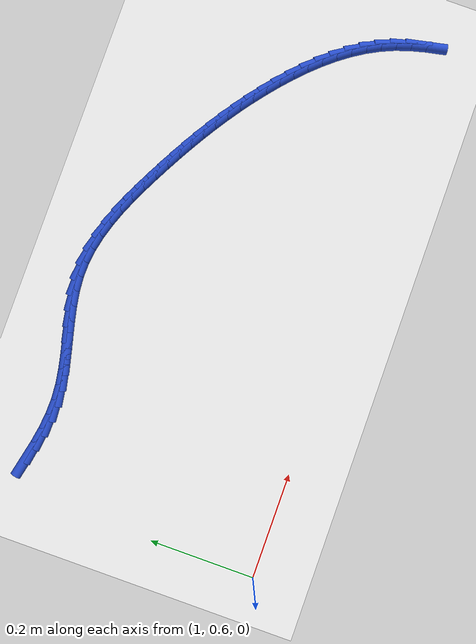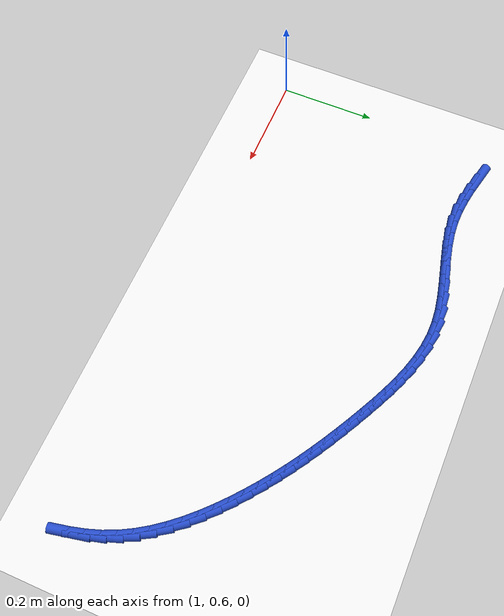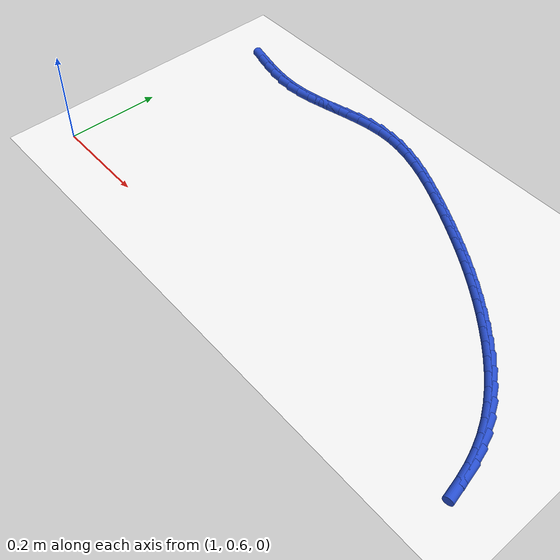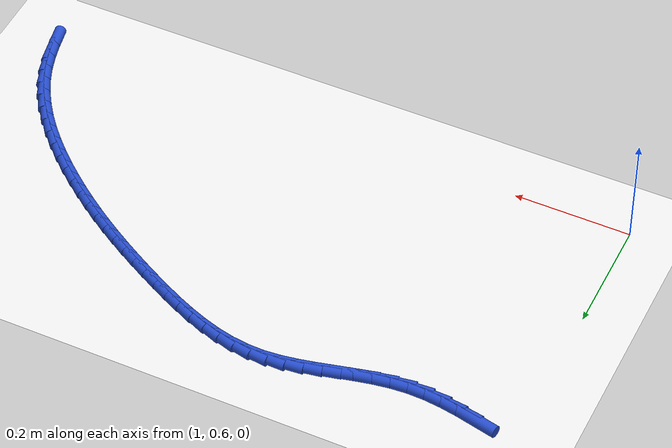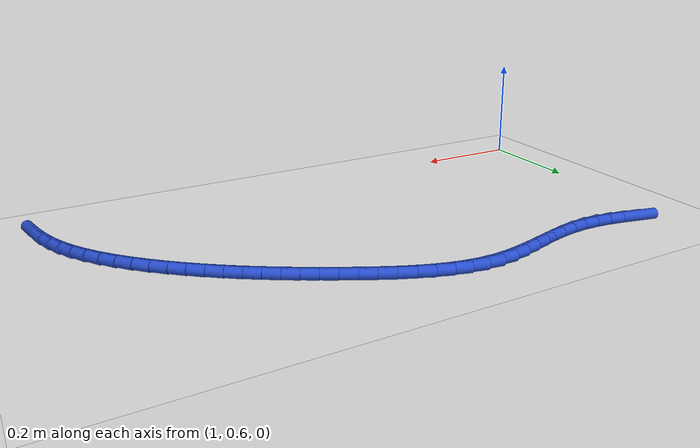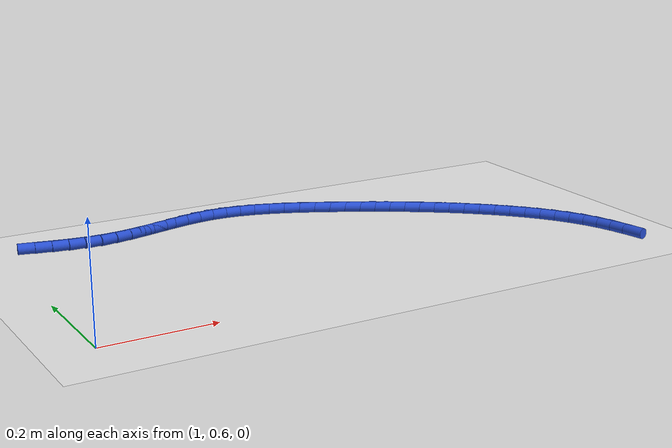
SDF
<sdf version="1.6">
 <world name="default">
  <model name="ground_plane">
   <static>1</static>
   <link name="link">
    <collision name="collision">
     <geometry><plane><normal>0 0 1</normal><size>100 100</size></plane></geometry>
     <surface><friction><ode><mu>100</mu><mu2>50</mu2></ode></friction></surface>
    </collision>
    <visual name="visual">
     <cast_shadows>0</cast_shadows>
     <geometry><plane><normal>0 0 1</normal><size>100 100</size></plane></geometry>
     <material>
      <script><uri>file://media/materials/scripts/gazebo.material</uri><name>Gazebo/WhiteGlow</name></script>
     </material>
    </visual>
   </link>
  </model>
  <model name="line">
   <link name="link_58">
    <pose>1.0699996267666956 1.0671041223457225 0.01 0 1.57 -0.2171216049999247</pose>
    <collision name="collision">
     <geometry><cylinder><radius>0.01</radius><length>0.08</length></cylinder></geometry>
    </collision>
    <visual name="visual">
     <material>
      <script><name>Gazebo/Blue</name><uri>file://media/materials/scripts/gazebo.material</uri></script>
     </material>
     <geometry><cylinder><radius>0.01</radius><length>0.08</length></cylinder></geometry>
    </visual>
   </link>
   <link name="link_59">
    <pose>1.0989679382553634 1.0607137410377852 0.01 0 1.57 -0.1693121101207636</pose>
    <collision name="collision">
     <geometry><cylinder><radius>0.01</radius><length>0.08</length></cylinder></geometry>
    </collision>
    <visual name="visual">
     <material>
      <script><name>Gazebo/Blue</name><uri>file://media/materials/scripts/gazebo.material</uri></script>
     </material>
     <geometry><cylinder><radius>0.01</radius><length>0.08</length></cylinder></geometry>
    </visual>
   </link>
   <link name="link_60">
    <pose>1.1279360252701225 1.0557616828775305 0.01 0 1.57 -0.10472055467107064</pose>
    <collision name="collision">
     <geometry><cylinder><radius>0.01</radius><length>0.08</length></cylinder></geometry>
    </collision>
    <visual name="visual">
     <material>
      <script><name>Gazebo/Blue</name><uri>file://media/materials/scripts/gazebo.material</uri></script>
     </material>
     <geometry><cylinder><radius>0.01</radius><length>0.08</length></cylinder></geometry>
    </visual>
   </link>
   <link name="link_61">
    <pose>1.1569004547826158 1.0527173752493306 0.01 0 1.57 -0.023034289158779902</pose>
    <collision name="collision">
     <geometry><cylinder><radius>0.01</radius><length>0.08</length></cylinder></geometry>
    </collision>
    <visual name="visual">
     <material>
      <script><name>Gazebo/Blue</name><uri>file://media/materials/scripts/gazebo.material</uri></script>
     </material>
     <geometry><cylinder><radius>0.01</radius><length>0.08</length></cylinder></geometry>
    </visual>
   </link>
   <link name="link_62">
    <pose>1.1858577937644874 1.0520502455375575 0.01 0 1.57 0.07282915874393478</pose>
    <collision name="collision">
     <geometry><cylinder><radius>0.01</radius><length>0.08</length></cylinder></geometry>
    </collision>
    <visual name="visual">
     <material>
      <script><name>Gazebo/Blue</name><uri>file://media/materials/scripts/gazebo.material</uri></script>
     </material>
     <geometry><cylinder><radius>0.01</radius><length>0.08</length></cylinder></geometry>
    </visual>
   </link>
   <link name="link_63">
    <pose>1.214804503902751 1.054162145305915 0.01 0 1.57 0.15611509702218304</pose>
    <collision name="collision">
     <geometry><cylinder><radius>0.01</radius><length>0.08</length></cylinder></geometry>
    </collision>
    <visual name="visual">
     <material>
      <script><name>Gazebo/Blue</name><uri>file://media/materials/scripts/gazebo.material</uri></script>
     </material>
     <geometry><cylinder><radius>0.01</radius><length>0.08</length></cylinder></geometry>
    </visual>
   </link>
   <link name="link_64">
    <pose>1.2437358953508337 1.0587158265264691 0.01 0 1.57 0.2113383226328555</pose>
    <collision name="collision">
     <geometry><cylinder><radius>0.01</radius><length>0.08</length></cylinder></geometry>
    </collision>
    <visual name="visual">
     <material>
      <script><name>Gazebo/Blue</name><uri>file://media/materials/scripts/gazebo.material</uri></script>
     </material>
     <geometry><cylinder><radius>0.01</radius><length>0.08</length></cylinder></geometry>
    </visual>
   </link>
   <link name="link_65">
    <pose>1.2726465683306345 1.0649183791652321 0.01 0 1.57 0.23945398494847578</pose>
    <collision name="collision">
     <geometry><cylinder><radius>0.01</radius><length>0.08</length></cylinder></geometry>
    </collision>
    <visual name="visual">
     <material>
      <script><name>Gazebo/Blue</name><uri>file://media/materials/scripts/gazebo.material</uri></script>
     </material>
     <geometry><cylinder><radius>0.01</radius><length>0.08</length></cylinder></geometry>
    </visual>
   </link>
   <link name="link_66">
    <pose>1.301531112629606 1.0719701959511532 0.01 0 1.57 0.24132919764163444</pose>
    <collision name="collision">
     <geometry><cylinder><radius>0.01</radius><length>0.08</length></cylinder></geometry>
    </collision>
    <visual name="visual">
     <material>
      <script><name>Gazebo/Blue</name><uri>file://media/materials/scripts/gazebo.material</uri></script>
     </material>
     <geometry><cylinder><radius>0.01</radius><length>0.08</length></cylinder></geometry>
    </visual>
   </link>
   <link name="link_67">
    <pose>1.3303841180352018 1.0790716696131821 0.01 0 1.57 0.21694717801702884</pose>
    <collision name="collision">
     <geometry><cylinder><radius>0.01</radius><length>0.08</length></cylinder></geometry>
    </collision>
    <visual name="visual">
     <material>
      <script><name>Gazebo/Blue</name><uri>file://media/materials/scripts/gazebo.material</uri></script>
     </material>
     <geometry><cylinder><radius>0.01</radius><length>0.08</length></cylinder></geometry>
    </visual>
   </link>
   <link name="link_68">
    <pose>1.359200174334876 1.0854231928802693 0.01 0 1.57 0.16536337384341823</pose>
    <collision name="collision">
     <geometry><cylinder><radius>0.01</radius><length>0.08</length></cylinder></geometry>
    </collision>
    <visual name="visual">
     <material>
      <script><name>Gazebo/Blue</name><uri>file://media/materials/scripts/gazebo.material</uri></script>
     </material>
     <geometry><cylinder><radius>0.01</radius><length>0.08</length></cylinder></geometry>
    </visual>
   </link>
   <link name="link_69">
    <pose>1.3879738713160819 1.0902251584813638 0.01 0 1.57 0.08517969117794863</pose>
    <collision name="collision">
     <geometry><cylinder><radius>0.01</radius><length>0.08</length></cylinder></geometry>
    </collision>
    <visual name="visual">
     <material>
      <script><name>Gazebo/Blue</name><uri>file://media/materials/scripts/gazebo.material</uri></script>
     </material>
     <geometry><cylinder><radius>0.01</radius><length>0.08</length></cylinder></geometry>
    </visual>
   </link>
   <link name="link_70">
    <pose>1.416699798766274 1.0926779591454163 0.01 0 1.57 -0.021218622947271636</pose>
    <collision name="collision">
     <geometry><cylinder><radius>0.01</radius><length>0.08</length></cylinder></geometry>
    </collision>
    <visual name="visual">
     <material>
      <script><name>Gazebo/Blue</name><uri>file://media/materials/scripts/gazebo.material</uri></script>
     </material>
     <geometry><cylinder><radius>0.01</radius><length>0.08</length></cylinder></geometry>
    </visual>
   </link>
   <link name="link_71">
    <pose>1.4453690356736648 1.0920695461059589 0.01 0 1.57 -0.12692684525320397</pose>
    <collision name="collision">
     <geometry><cylinder><radius>0.01</radius><length>0.08</length></cylinder></geometry>
    </collision>
    <visual name="visual">
     <material>
      <script><name>Gazebo/Blue</name><uri>file://media/materials/scripts/gazebo.material</uri></script>
     </material>
     <geometry><cylinder><radius>0.01</radius><length>0.08</length></cylinder></geometry>
    </visual>
   </link>
   <link name="link_72">
    <pose>1.4739431801302336 1.088423117191821 0.01 0 1.57 -0.21789391723330317</pose>
    <collision name="collision">
     <geometry><cylinder><radius>0.01</radius><length>0.08</length></cylinder></geometry>
    </collision>
    <visual name="visual">
     <material>
      <script><name>Gazebo/Blue</name><uri>file://media/materials/scripts/gazebo.material</uri></script>
     </material>
     <geometry><cylinder><radius>0.01</radius><length>0.08</length></cylinder></geometry>
    </visual>
   </link>
   <link name="link_73">
    <pose>1.502369095050644 1.0821293620768846 0.01 0 1.57 -0.29406613173012375</pose>
    <collision name="collision">
     <geometry><cylinder><radius>0.01</radius><length>0.08</length></cylinder></geometry>
    </collision>
    <visual name="visual">
     <material>
      <script><name>Gazebo/Blue</name><uri>file://media/materials/scripts/gazebo.material</uri></script>
     </material>
     <geometry><cylinder><radius>0.01</radius><length>0.08</length></cylinder></geometry>
    </visual>
   </link>
   <link name="link_74">
    <pose>1.5305935342266412 1.0735816919349512 0.01 0 1.57 -0.35624595211290366</pose>
    <collision name="collision">
     <geometry><cylinder><radius>0.01</radius><length>0.08</length></cylinder></geometry>
    </collision>
    <visual name="visual">
     <material>
      <script><name>Gazebo/Blue</name><uri>file://media/materials/scripts/gazebo.material</uri></script>
     </material>
     <geometry><cylinder><radius>0.01</radius><length>0.08</length></cylinder></geometry>
    </visual>
   </link>
   <link name="link_75">
    <pose>1.558563251449966 1.063173517939823 0.01 0 1.57 -0.40550951604629987</pose>
    <collision name="collision">
     <geometry><cylinder><radius>0.01</radius><length>0.08</length></cylinder></geometry>
    </collision>
    <visual name="visual">
     <material>
      <script><name>Gazebo/Blue</name><uri>file://media/materials/scripts/gazebo.material</uri></script>
     </material>
     <geometry><cylinder><radius>0.01</radius><length>0.08</length></cylinder></geometry>
    </visual>
   </link>
   <link name="link_76">
    <pose>1.5862250005123621 1.0512982512653022 0.01 0 1.57 -0.44288615182390334</pose>
    <collision name="collision">
     <geometry><cylinder><radius>0.01</radius><length>0.08</length></cylinder></geometry>
    </collision>
    <visual name="visual">
     <material>
      <script><name>Gazebo/Blue</name><uri>file://media/materials/scripts/gazebo.material</uri></script>
     </material>
     <geometry><cylinder><radius>0.01</radius><length>0.08</length></cylinder></geometry>
    </visual>
   </link>
   <link name="link_77">
    <pose>1.6135255352055728 1.0383493030851905 0.01 0 1.57 -0.46917211299571915</pose>
    <collision name="collision">
     <geometry><cylinder><radius>0.01</radius><length>0.08</length></cylinder></geometry>
    </collision>
    <visual name="visual">
     <material>
      <script><name>Gazebo/Blue</name><uri>file://media/materials/scripts/gazebo.material</uri></script>
     </material>
     <geometry><cylinder><radius>0.01</radius><length>0.08</length></cylinder></geometry>
    </visual>
   </link>
   <link name="link_78">
    <pose>1.6404116093213408 1.0247200845732893 0.01 0 1.57 -0.48589859762808674</pose>
    <collision name="collision">
     <geometry><cylinder><radius>0.01</radius><length>0.08</length></cylinder></geometry>
    </collision>
    <visual name="visual">
     <material>
      <script><name>Gazebo/Blue</name><uri>file://media/materials/scripts/gazebo.material</uri></script>
     </material>
     <geometry><cylinder><radius>0.01</radius><length>0.08</length></cylinder></geometry>
    </visual>
   </link>
   <link name="link_79">
    <pose>1.666835811844344 1.0107646347210333 0.01 0 1.57 -0.5012498170042013</pose>
    <collision name="collision">
     <geometry><cylinder><radius>0.01</radius><length>0.08</length></cylinder></geometry>
    </collision>
    <visual name="visual">
     <material>
      <script><name>Gazebo/Blue</name><uri>file://media/materials/scripts/gazebo.material</uri></script>
     </material>
     <geometry><cylinder><radius>0.01</radius><length>0.08</length></cylinder></geometry>
    </visual>
   </link>
   <link name="link_80">
    <pose>1.6927945788015677 0.9965411404777652 0.01 0 1.57 -0.5188773775584801</pose>
    <collision name="collision">
     <geometry><cylinder><radius>0.01</radius><length>0.08</length></cylinder></geometry>
    </collision>
    <visual name="visual">
     <material>
      <script><name>Gazebo/Blue</name><uri>file://media/materials/scripts/gazebo.material</uri></script>
     </material>
     <geometry><cylinder><radius>0.01</radius><length>0.08</length></cylinder></geometry>
    </visual>
   </link>
   <link name="link_81">
    <pose>1.7183042844407013 0.9819732583205157 0.01 0 1.57 -0.5387470754433419</pose>
    <collision name="collision">
     <geometry><cylinder><radius>0.01</radius><length>0.08</length></cylinder></geometry>
    </collision>
    <visual name="visual">
     <material>
      <script><name>Gazebo/Blue</name><uri>file://media/materials/scripts/gazebo.material</uri></script>
     </material>
     <geometry><cylinder><radius>0.01</radius><length>0.08</length></cylinder></geometry>
    </visual>
   </link>
   <link name="link_82">
    <pose>1.7433814033484387 0.966983967702319 0.01 0 1.57 -0.560771373461822</pose>
    <collision name="collision">
     <geometry><cylinder><radius>0.01</radius><length>0.08</length></cylinder></geometry>
    </collision>
    <visual name="visual">
     <material>
      <script><name>Gazebo/Blue</name><uri>file://media/materials/scripts/gazebo.material</uri></script>
     </material>
     <geometry><cylinder><radius>0.01</radius><length>0.08</length></cylinder></geometry>
    </visual>
   </link>
   <link name="link_83">
    <pose>1.7680424101114747 0.9514962480762086 0.01 0 1.57 -0.5848262778411262</pose>
    <collision name="collision">
     <geometry><cylinder><radius>0.01</radius><length>0.08</length></cylinder></geometry>
    </collision>
    <visual name="visual">
     <material>
      <script><name>Gazebo/Blue</name><uri>file://media/materials/scripts/gazebo.material</uri></script>
     </material>
     <geometry><cylinder><radius>0.01</radius><length>0.08</length></cylinder></geometry>
    </visual>
   </link>
   <link name="link_84">
    <pose>1.792303779316505 0.9354330788952191 0.01 0 1.57 -0.6107511172986645</pose>
    <collision name="collision">
     <geometry><cylinder><radius>0.01</radius><length>0.08</length></cylinder></geometry>
    </collision>
    <visual name="visual">
     <material>
      <script><name>Gazebo/Blue</name><uri>file://media/materials/scripts/gazebo.material</uri></script>
     </material>
     <geometry><cylinder><radius>0.01</radius><length>0.08</length></cylinder></geometry>
    </visual>
   </link>
   <link name="link_85">
    <pose>1.816181985550224 0.9187174396123834 0.01 0 1.57 -0.6383499978164633</pose>
    <collision name="collision">
     <geometry><cylinder><radius>0.01</radius><length>0.08</length></cylinder></geometry>
    </collision>
    <visual name="visual">
     <material>
      <script><name>Gazebo/Blue</name><uri>file://media/materials/scripts/gazebo.material</uri></script>
     </material>
     <geometry><cylinder><radius>0.01</radius><length>0.08</length></cylinder></geometry>
    </visual>
   </link>
   <link name="link_86">
    <pose>1.8396935033993267 0.9012723096807367 0.01 0 1.57 -0.6673951291879331</pose>
    <collision name="collision">
     <geometry><cylinder><radius>0.01</radius><length>0.08</length></cylinder></geometry>
    </collision>
    <visual name="visual">
     <material>
      <script><name>Gazebo/Blue</name><uri>file://media/materials/scripts/gazebo.material</uri></script>
     </material>
     <geometry><cylinder><radius>0.01</radius><length>0.08</length></cylinder></geometry>
    </visual>
   </link>
   <link name="link_87">
    <pose>1.8628548074505074 0.8830206685533124 0.01 0 1.57 -0.6980067632715559</pose>
    <collision name="collision">
     <geometry><cylinder><radius>0.01</radius><length>0.08</length></cylinder></geometry>
    </collision>
    <visual name="visual">
     <material>
      <script><name>Gazebo/Blue</name><uri>file://media/materials/scripts/gazebo.material</uri></script>
     </material>
     <geometry><cylinder><radius>0.01</radius><length>0.08</length></cylinder></geometry>
    </visual>
   </link>
   <link name="link_88">
    <pose>1.885656845838557 0.8638923407009681 0.01 0 1.57 -0.7326987604007634</pose>
    <collision name="collision">
     <geometry><cylinder><radius>0.01</radius><length>0.08</length></cylinder></geometry>
    </collision>
    <visual name="visual">
     <material>
      <script><name>Gazebo/Blue</name><uri>file://media/materials/scripts/gazebo.material</uri></script>
     </material>
     <geometry><cylinder><radius>0.01</radius><length>0.08</length></cylinder></geometry>
    </visual>
   </link>
   <link name="link_89">
    <pose>1.907915726763709 0.843864034606201 0.01 0 1.57 -0.7729753488264226</pose>
    <collision name="collision">
     <geometry><cylinder><radius>0.01</radius><length>0.08</length></cylinder></geometry>
    </collision>
    <visual name="visual">
     <material>
      <script><name>Gazebo/Blue</name><uri>file://media/materials/scripts/gazebo.material</uri></script>
     </material>
     <geometry><cylinder><radius>0.01</radius><length>0.08</length></cylinder></geometry>
    </visual>
   </link>
   <link name="link_90">
    <pose>1.9293742923954078 0.8229321053239544 0.01 0 1.57 -0.8194353994487286</pose>
    <collision name="collision">
     <geometry><cylinder><radius>0.01</radius><length>0.08</length></cylinder></geometry>
    </collision>
    <visual name="visual">
     <material>
      <script><name>Gazebo/Blue</name><uri>file://media/materials/scripts/gazebo.material</uri></script>
     </material>
     <geometry><cylinder><radius>0.01</radius><length>0.08</length></cylinder></geometry>
    </visual>
   </link>
   <link name="link_91">
    <pose>1.9497751355007242 0.8010929747873913 0.01 0 1.57 -0.8727607862284106</pose>
    <collision name="collision">
     <geometry><cylinder><radius>0.01</radius><length>0.08</length></cylinder></geometry>
    </collision>
    <visual name="visual">
     <material>
      <script><name>Gazebo/Blue</name><uri>file://media/materials/scripts/gazebo.material</uri></script>
     </material>
     <geometry><cylinder><radius>0.01</radius><length>0.08</length></cylinder></geometry>
    </visual>
   </link>
   <link name="link_92">
    <pose>1.9688608488467296 0.7783430649296749 0.01 0 1.57 -0.9336818026973555</pose>
    <collision name="collision">
     <geometry><cylinder><radius>0.01</radius><length>0.08</length></cylinder></geometry>
    </collision>
    <visual name="visual">
     <material>
      <script><name>Gazebo/Blue</name><uri>file://media/materials/scripts/gazebo.material</uri></script>
     </material>
     <geometry><cylinder><radius>0.01</radius><length>0.08</length></cylinder></geometry>
    </visual>
   </link>
   <link name="link_93">
    <pose>1.9863740252004938 0.7546787976839681 0.01 0 1.57 -1.002909430333122</pose>
    <collision name="collision">
     <geometry><cylinder><radius>0.01</radius><length>0.08</length></cylinder></geometry>
    </collision>
    <visual name="visual">
     <material>
      <script><name>Gazebo/Blue</name><uri>file://media/materials/scripts/gazebo.material</uri></script>
     </material>
     <geometry><cylinder><radius>0.01</radius><length>0.08</length></cylinder></geometry>
    </visual>
   </link>
   <link name="link_94">
    <pose>2.0020572573290885 0.7300965949834349 0.01 0 1.57 -1.0810252726237681</pose>
    <collision name="collision">
     <geometry><cylinder><radius>0.01</radius><length>0.08</length></cylinder></geometry>
    </collision>
    <visual name="visual">
     <material>
      <script><name>Gazebo/Blue</name><uri>file://media/materials/scripts/gazebo.material</uri></script>
     </material>
     <geometry><cylinder><radius>0.01</radius><length>0.08</length></cylinder></geometry>
    </visual>
   </link>
   <link name="link_95">
    <pose>2.015653137999584 0.7045928787612383 0.01 0 1.57 -1.167430268676624</pose>
    <collision name="collision">
     <geometry><cylinder><radius>0.01</radius><length>0.08</length></cylinder></geometry>
    </collision>
    <visual name="visual">
     <material>
      <script><name>Gazebo/Blue</name><uri>file://media/materials/scripts/gazebo.material</uri></script>
     </material>
     <geometry><cylinder><radius>0.01</radius><length>0.08</length></cylinder></geometry>
    </visual>
   </link>
   <link name="link_96">
    <pose>2.02692984164409 0.6781692961768293 0.01 0 1.57 -1.2495726912025036</pose>
    <collision name="collision">
     <geometry><cylinder><radius>0.01</radius><length>0.08</length></cylinder></geometry>
    </collision>
    <visual name="visual">
     <material>
      <script><name>Gazebo/Blue</name><uri>file://media/materials/scripts/gazebo.material</uri></script>
     </material>
     <geometry><cylinder><radius>0.01</radius><length>0.08</length></cylinder></geometry>
    </visual>
   </link>
   <link name="link_97">
    <pose>2.036004081890568 0.6508986858529946 0.01 0 1.57 -1.3176994537244056</pose>
    <collision name="collision">
     <geometry><cylinder><radius>0.01</radius><length>0.08</length></cylinder></geometry>
    </collision>
    <visual name="visual">
     <material>
      <script><name>Gazebo/Blue</name><uri>file://media/materials/scripts/gazebo.material</uri></script>
     </material>
     <geometry><cylinder><radius>0.01</radius><length>0.08</length></cylinder></geometry>
    </visual>
   </link>
   <link name="link_98">
    <pose>2.0432443793386836 0.6229053196716963 0.01 0 1.57 -1.3713055641967067</pose>
    <collision name="collision">
     <geometry><cylinder><radius>0.01</radius><length>0.08</length></cylinder></geometry>
    </collision>
    <visual name="visual">
     <material>
      <script><name>Gazebo/Blue</name><uri>file://media/materials/scripts/gazebo.material</uri></script>
     </material>
     <geometry><cylinder><radius>0.01</radius><length>0.08</length></cylinder></geometry>
    </visual>
   </link>
  </model>
 </world>
</sdf>
